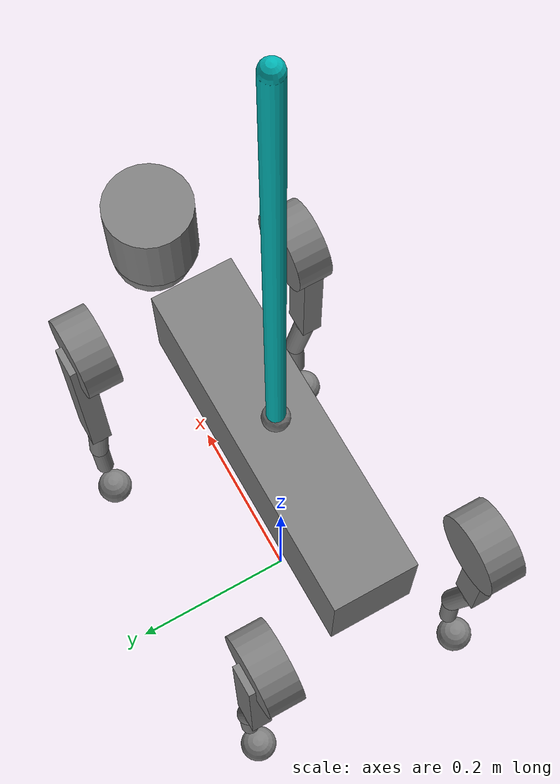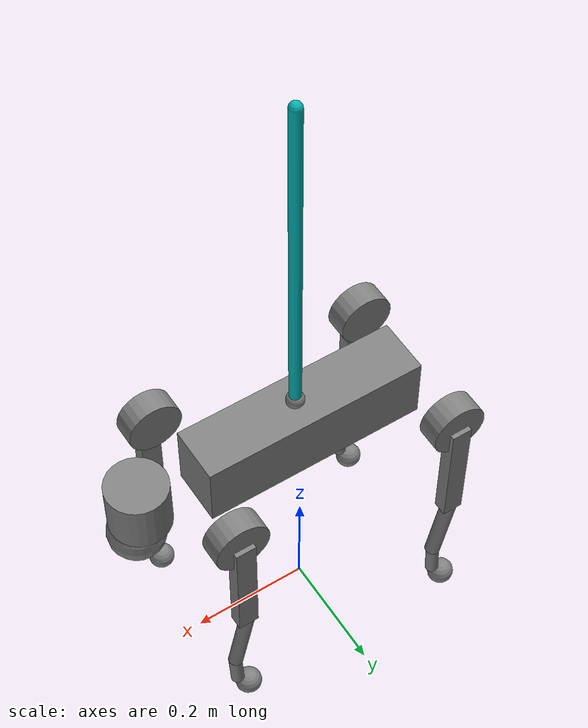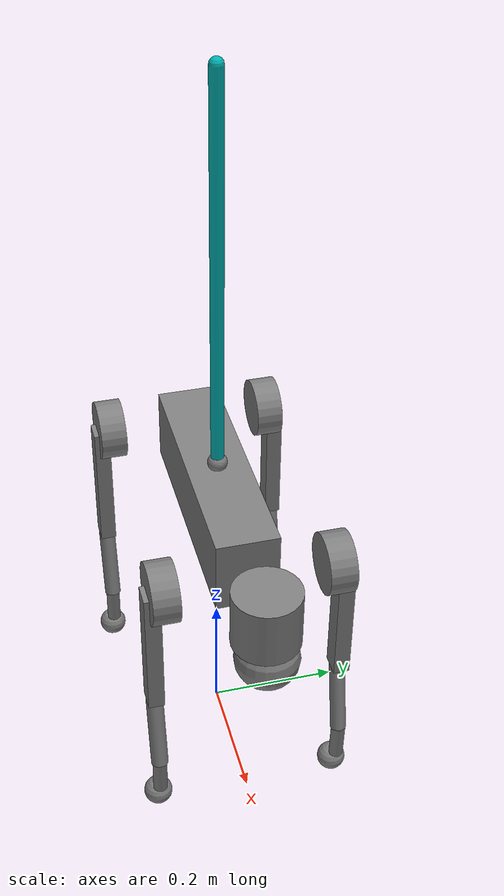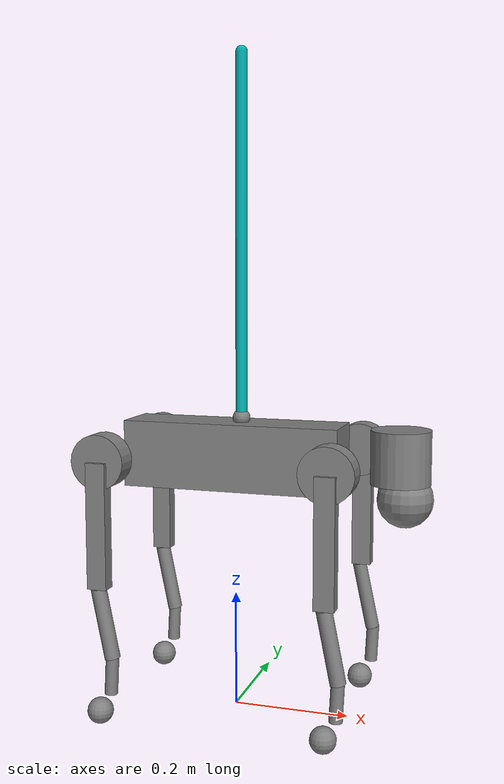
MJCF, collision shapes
<mujoco model="go2">
  <compiler angle="radian" meshdir="assets" autolimits="true" />

  <option cone="elliptic" impratio="100" />

  <default>
    <default class="go2">
      <geom friction="0.4" margin="0.001" condim="1" />
      <joint axis="0 1 0" damping="0.1" armature="0.01" frictionloss="0.2" />
      <motor ctrlrange="-23.7 23.7" />
      <default class="abduction">
        <joint axis="1 0 0" range="-1.0472 1.0472" />
      </default>
      <default class="hip">
        <default class="front_hip">
          <joint range="-1.5708 3.4907" />
        </default>
        <default class="back_hip">
          <joint range="-0.5236 4.5379" />
        </default>
      </default>
      <default class="knee">
        <joint range="-2.7227 -0.83776" />
        <motor ctrlrange="-45.43 45.43" />
      </default>
      <default class="visual">
        <geom type="mesh" contype="0" conaffinity="0" group="2" />
      </default>
      <default class="collision">
        <geom group="3" />
        <default class="foot">
          <geom size="0.022" pos="-0.002 0 -0.213" priority="1" condim="6" friction="0.4 0.02 0.01" />
        </default>
      </default>
    </default>
  </default>

  <asset>
    <material name="metal" rgba=".9 .95 .95 1" />
    <material name="black" rgba="0 0 0 1" />
    <material name="white" rgba="1 1 1 1" />
    <material name="gray" rgba="0.671705 0.692426 0.774270 1" />

    <mesh file="base_0.obj" />
    <mesh file="base_1.obj" />
    <mesh file="base_2.obj" />
    <mesh file="base_3.obj" />
    <mesh file="base_4.obj" />
    <mesh file="hip_0.obj" />
    <mesh file="hip_1.obj" />
    <mesh file="thigh_0.obj" />
    <mesh file="thigh_1.obj" />
    <mesh file="thigh_mirror_0.obj" />
    <mesh file="thigh_mirror_1.obj" />
    <mesh file="calf_0.obj" />
    <mesh file="calf_1.obj" />
    <mesh file="calf_mirror_0.obj" />
    <mesh file="calf_mirror_1.obj" />
    <mesh file="foot.obj" />
  </asset>

	<option gravity="0 0 -9.81" integrator="RK4" timestep="0.02" />

  <worldbody>
    <body name="base_link" pos="0 0 0.445" childclass="go2">
      <inertial pos="0.021112 0 -0.005366" quat="-0.000543471 0.713435 -0.00173769 0.700719" mass="6.921" diaginertia="0.107027 0.0980771 0.0244531" />
      <freejoint />
      <geom mesh="base_0" material="black" class="visual" />
      <geom mesh="base_1" material="black" class="visual" />
      <geom mesh="base_2" material="black" class="visual" />
      <geom mesh="base_3" material="white" class="visual" />
      <geom mesh="base_4" material="gray" class="visual" />
      <geom size="0.1881 0.04675 0.057" type="box" class="collision" />
      <geom size="0.05 0.045" pos="0.285 0 0.01" type="cylinder" class="collision" />
      <geom size="0.047" pos="0.293 0 -0.06" class="collision" />
      <site name="imu" pos="-0.02557 0 0.04232" />

      <body name="mount" pos="0 0 0">

        <geom name="mount" pos="0.01 0 0.064" quat="0.707 0 0.707 0" size="0.015" type="sphere" />

        <body name="pole" pos="0.01 0 0.071">
          <joint axis="0 1 0" name="pole_joint" pos="0 0 0" range="0 90" damping="0.02" type="ball" />
          <geom fromto="0 0 0 0.001 0 0.6" name="cpole" rgba="0 0.7 0.7 1" size="0.01" type="capsule" />
          <inertial pos="0 0 0.3" quat="1 0 0 0" mass="0.5108229654737004" diaginertia="0.015337459538347855 0.015337459538347855 2.5541148273685025e-05" />
        <!--Pendulum parameters height:0.6, radii:0.01, density:2710.0--></body>

      </body>

      <body name="FL_hip" pos="0.1934 0.0465 0">
        <inertial pos="-0.0054 0.00194 -0.000105" quat="0.497014 0.499245 0.505462 0.498237" mass="0.678" diaginertia="0.00088403 0.000596003 0.000479967" />
        <joint name="FL_hip_joint" class="abduction" />
        <geom mesh="hip_0" material="metal" class="visual" />
        <geom mesh="hip_1" material="gray" class="visual" />
        <geom size="0.046 0.02" pos="0 0.08 0" quat="1 1 0 0" type="cylinder" class="collision" />
        <body name="FL_thigh" pos="0 0.0955 0">
          <inertial pos="-0.00374 -0.0223 -0.0327" quat="0.829533 0.0847635 -0.0200632 0.551623" mass="1.152" diaginertia="0.00594973 0.00584149 0.000878787" />
          <joint name="FL_thigh_joint" class="front_hip" />
          <geom mesh="thigh_0" material="metal" class="visual" />
          <geom mesh="thigh_1" material="gray" class="visual" />
          <geom size="0.1065 0.01225 0.017" pos="0 0 -0.1065" quat="0.707107 0 0.707107 0" type="box" class="collision" />
          <body name="FL_calf" pos="0 0 -0.213">
            <inertial pos="0.00629595 -0.000622121 -0.141417" quat="0.710672 0.00154099 -0.00450087 0.703508" mass="0.241352" diaginertia="0.0014901 0.00146356 5.31397e-05" />
            <joint name="FL_calf_joint" class="knee" />
            <geom mesh="calf_0" material="gray" class="visual" />
            <geom mesh="calf_1" material="black" class="visual" />
            <geom size="0.012 0.06" pos="0.008 0 -0.06" quat="0.994493 0 -0.104807 0" type="cylinder" class="collision" />
            <geom size="0.011 0.0325" pos="0.02 0 -0.148" quat="0.999688 0 0.0249974 0" type="cylinder" class="collision" />
            <geom pos="0 0 -0.213" mesh="foot" class="visual" material="black" />
            <geom name="FL" class="foot" />
            <site name="FL_foot" pos="0 0 -0.213" />
          </body>
        </body>
      </body>
      <body name="FR_hip" pos="0.1934 -0.0465 0">
        <inertial pos="-0.0054 -0.00194 -0.000105" quat="0.498237 0.505462 0.499245 0.497014" mass="0.678" diaginertia="0.00088403 0.000596003 0.000479967" />
        <joint name="FR_hip_joint" class="abduction" />
        <geom mesh="hip_0" material="metal" class="visual" quat="4.63268e-05 1 0 0" />
        <geom mesh="hip_1" material="gray" class="visual" quat="4.63268e-05 1 0 0" />
        <geom size="0.046 0.02" pos="0 -0.08 0" quat="0.707107 0.707107 0 0" type="cylinder" class="collision" />
        <body name="FR_thigh" pos="0 -0.0955 0">
          <inertial pos="-0.00374 0.0223 -0.0327" quat="0.551623 -0.0200632 0.0847635 0.829533" mass="1.152" diaginertia="0.00594973 0.00584149 0.000878787" />
          <joint name="FR_thigh_joint" class="front_hip" />
          <geom mesh="thigh_mirror_0" material="metal" class="visual" />
          <geom mesh="thigh_mirror_1" material="gray" class="visual" />
          <geom size="0.1065 0.01225 0.017" pos="0 0 -0.1065" quat="0.707107 0 0.707107 0" type="box" class="collision" />
          <body name="FR_calf" pos="0 0 -0.213">
            <inertial pos="0.00629595 0.000622121 -0.141417" quat="0.703508 -0.00450087 0.00154099 0.710672" mass="0.241352" diaginertia="0.0014901 0.00146356 5.31397e-05" />
            <joint name="FR_calf_joint" class="knee" />
            <geom mesh="calf_mirror_0" material="gray" class="visual" />
            <geom mesh="calf_mirror_1" material="black" class="visual" />
            <geom size="0.013 0.06" pos="0.01 0 -0.06" quat="0.995004 0 -0.0998334 0" type="cylinder" class="collision" />
            <geom size="0.011 0.0325" pos="0.02 0 -0.148" quat="0.999688 0 0.0249974 0" type="cylinder" class="collision" />
            <geom pos="0 0 -0.213" mesh="foot" class="visual" material="black" />
            <geom name="FR" class="foot" />
            <site name="FR_foot" pos="0 0 -0.213" />
          </body>
        </body>
      </body>
      <body name="RL_hip" pos="-0.1934 0.0465 0">
        <inertial pos="0.0054 0.00194 -0.000105" quat="0.505462 0.498237 0.497014 0.499245" mass="0.678" diaginertia="0.00088403 0.000596003 0.000479967" />
        <joint name="RL_hip_joint" class="abduction" />
        <geom mesh="hip_0" material="metal" class="visual" quat="4.63268e-05 0 1 0" />
        <geom mesh="hip_1" material="gray" class="visual" quat="4.63268e-05 0 1 0" />
        <geom size="0.046 0.02" pos="0 0.08 0" quat="0.707107 0.707107 0 0" type="cylinder" class="collision" />
        <body name="RL_thigh" pos="0 0.0955 0">
          <inertial pos="-0.00374 -0.0223 -0.0327" quat="0.829533 0.0847635 -0.0200632 0.551623" mass="1.152" diaginertia="0.00594973 0.00584149 0.000878787" />
          <joint name="RL_thigh_joint" class="back_hip" />
          <geom mesh="thigh_0" material="metal" class="visual" />
          <geom mesh="thigh_1" material="gray" class="visual" />
          <geom size="0.1065 0.01225 0.017" pos="0 0 -0.1065" quat="0.707107 0 0.707107 0" type="box" class="collision" />
          <body name="RL_calf" pos="0 0 -0.213">
            <inertial pos="0.00629595 -0.000622121 -0.141417" quat="0.710672 0.00154099 -0.00450087 0.703508" mass="0.241352" diaginertia="0.0014901 0.00146356 5.31397e-05" />
            <joint name="RL_calf_joint" class="knee" />
            <geom mesh="calf_0" material="gray" class="visual" />
            <geom mesh="calf_1" material="black" class="visual" />
            <geom size="0.013 0.06" pos="0.01 0 -0.06" quat="0.995004 0 -0.0998334 0" type="cylinder" class="collision" />
            <geom size="0.011 0.0325" pos="0.02 0 -0.148" quat="0.999688 0 0.0249974 0" type="cylinder" class="collision" />
            <geom pos="0 0 -0.213" mesh="foot" class="visual" material="black" />
            <geom name="RL" class="foot" />
            <site name="RL_foot" pos="0 0 -0.213" />
          </body>
        </body>
      </body>
      <body name="RR_hip" pos="-0.1934 -0.0465 0">
        <inertial pos="0.0054 -0.00194 -0.000105" quat="0.499245 0.497014 0.498237 0.505462" mass="0.678" diaginertia="0.00088403 0.000596003 0.000479967" />
        <joint name="RR_hip_joint" class="abduction" />
        <geom mesh="hip_0" material="metal" class="visual" quat="2.14617e-09 4.63268e-05 4.63268e-05 -1" />
        <geom mesh="hip_1" material="gray" class="visual" quat="2.14617e-09 4.63268e-05 4.63268e-05 -1" />
        <geom size="0.046 0.02" pos="0 -0.08 0" quat="0.707107 0.707107 0 0" type="cylinder" class="collision" />
        <body name="RR_thigh" pos="0 -0.0955 0">
          <inertial pos="-0.00374 0.0223 -0.0327" quat="0.551623 -0.0200632 0.0847635 0.829533" mass="1.152" diaginertia="0.00594973 0.00584149 0.000878787" />
          <joint name="RR_thigh_joint" class="back_hip" />
          <geom mesh="thigh_mirror_0" material="metal" class="visual" />
          <geom mesh="thigh_mirror_1" material="gray" class="visual" />
          <geom size="0.1065 0.01225 0.017" pos="0 0 -0.1065" quat="0.707107 0 0.707107 0" type="box" class="collision" />
          <body name="RR_calf" pos="0 0 -0.213">
            <inertial pos="0.00629595 0.000622121 -0.141417" quat="0.703508 -0.00450087 0.00154099 0.710672" mass="0.241352" diaginertia="0.0014901 0.00146356 5.31397e-05" />
            <joint name="RR_calf_joint" class="knee" />
            <geom mesh="calf_mirror_0" material="gray" class="visual" />
            <geom mesh="calf_mirror_1" material="black" class="visual" />
            <geom size="0.013 0.06" pos="0.01 0 -0.06" quat="0.995004 0 -0.0998334 0" type="cylinder" class="collision" />
            <geom size="0.011 0.0325" pos="0.02 0 -0.148" quat="0.999688 0 0.0249974 0" type="cylinder" class="collision" />
            <geom pos="0 0 -0.213" mesh="foot" class="visual" material="black" />
            <geom name="RR" class="foot" />
            <site name="RR_foot" pos="0 0 -0.213" />
          </body>
        </body>
      </body>
    </body>
  </worldbody>

  <actuator>
    <motor class="abduction" name="FR_hip" joint="FR_hip_joint" />
    <motor class="hip" name="FR_thigh" joint="FR_thigh_joint" />
    <motor class="knee" name="FR_calf" joint="FR_calf_joint" />
    <motor class="abduction" name="FL_hip" joint="FL_hip_joint" />
    <motor class="hip" name="FL_thigh" joint="FL_thigh_joint" />
    <motor class="knee" name="FL_calf" joint="FL_calf_joint" />
    <motor class="abduction" name="RR_hip" joint="RR_hip_joint" />
    <motor class="hip" name="RR_thigh" joint="RR_thigh_joint" />
    <motor class="knee" name="RR_calf" joint="RR_calf_joint" />
    <motor class="abduction" name="RL_hip" joint="RL_hip_joint" />
    <motor class="hip" name="RL_thigh" joint="RL_thigh_joint" />
    <motor class="knee" name="RL_calf" joint="RL_calf_joint" />
  </actuator>

  <sensor>
    <framequat name="pole_quat" objtype="body" objname="pole" />
    <framequat name="base_quat" objtype="body" objname="base_link" />

    <jointpos name="FR_hip_pos" joint="FR_hip_joint" />
    <jointpos name="FR_thigh_pos" joint="FR_thigh_joint" />
    <jointpos name="FR_calf_pos" joint="FR_calf_joint" />
    <jointpos name="FL_hip_pos" joint="FL_hip_joint" />
    <jointpos name="FL_thigh_pos" joint="FL_thigh_joint" />
    <jointpos name="FL_calf_pos" joint="FL_calf_joint" />
    <jointpos name="RR_hip_pos" joint="RR_hip_joint" />
    <jointpos name="RR_thigh_pos" joint="RR_thigh_joint" />
    <jointpos name="RR_calf_pos" joint="RR_calf_joint" />
    <jointpos name="RL_hip_pos" joint="RL_hip_joint" />
    <jointpos name="RL_thigh_pos" joint="RL_thigh_joint" />
    <jointpos name="RL_calf_pos" joint="RL_calf_joint" />

    <jointvel name="FR_hip_vel" joint="FR_hip_joint" />
    <jointvel name="FR_thigh_vel" joint="FR_thigh_joint" />
    <jointvel name="FR_calf_vel" joint="FR_calf_joint" />
    <jointvel name="FL_hip_vel" joint="FL_hip_joint" />
    <jointvel name="FL_thigh_vel" joint="FL_thigh_joint" />
    <jointvel name="FL_calf_vel" joint="FL_calf_joint" />
    <jointvel name="RR_hip_vel" joint="RR_hip_joint" />
    <jointvel name="RR_thigh_vel" joint="RR_thigh_joint" />
    <jointvel name="RR_calf_vel" joint="RR_calf_joint" />
    <jointvel name="RL_hip_vel" joint="RL_hip_joint" />
    <jointvel name="RL_thigh_vel" joint="RL_thigh_joint" />
    <jointvel name="RL_calf_vel" joint="RL_calf_joint" />

    <jointactuatorfrc name="FR_hip_torque" joint="FR_hip_joint" noise="0.01" />
    <jointactuatorfrc name="FR_thigh_torque" joint="FR_thigh_joint" noise="0.01" />
    <jointactuatorfrc name="FR_calf_torque" joint="FR_calf_joint" noise="0.01" />
    <jointactuatorfrc name="FL_hip_torque" joint="FL_hip_joint" noise="0.01" />
    <jointactuatorfrc name="FL_thigh_torque" joint="FL_thigh_joint" noise="0.01" />
    <jointactuatorfrc name="FL_calf_torque" joint="FL_calf_joint" noise="0.01" />
    <jointactuatorfrc name="RR_hip_torque" joint="RR_hip_joint" noise="0.01" />
    <jointactuatorfrc name="RR_thigh_torque" joint="RR_thigh_joint" noise="0.01" />
    <jointactuatorfrc name="RR_calf_torque" joint="RR_calf_joint" noise="0.01" />
    <jointactuatorfrc name="RL_hip_torque" joint="RL_hip_joint" noise="0.01" />
    <jointactuatorfrc name="RL_thigh_torque" joint="RL_thigh_joint" noise="0.01" />
    <jointactuatorfrc name="RL_calf_torque" joint="RL_calf_joint" noise="0.01" />

    <framepos name="frame_pos" objtype="site" objname="imu" />
    <framequat name="imu_quat" objtype="site" objname="imu" />

    <accelerometer name="imu_acc" site="imu" />
    <gyro name="imu_gyro" site="imu" />

    <framelinvel name="frame_vel" objtype="site" objname="imu" />
    <frameangvel name="frame_ang_vel" objtype="site" objname="imu" />

    <force name="FR_contact" site="FR_foot" noise="0.01" />
    <force name="FL_contact" site="FL_foot" noise="0.01" />
    <force name="RR_contact" site="RR_foot" noise="0.01" />
    <force name="RL_contact" site="RL_foot" noise="0.01" />

    <framelinvel name="FR_vel" objtype="site" objname="FR_foot" />
    <framelinvel name="FL_vel" objtype="site" objname="FL_foot" />
    <framelinvel name="RR_vel" objtype="site" objname="RR_foot" />
    <framelinvel name="RL_vel" objtype="site" objname="RL_foot" />

    <framepos name="FR_pos" objtype="site" objname="FR_foot" />
    <framepos name="FL_pos" objtype="site" objname="FL_foot" />
    <framepos name="RR_pos" objtype="site" objname="RR_foot" />
    <framepos name="RL_pos" objtype="site" objname="RL_foot" />
  </sensor>

</mujoco>
